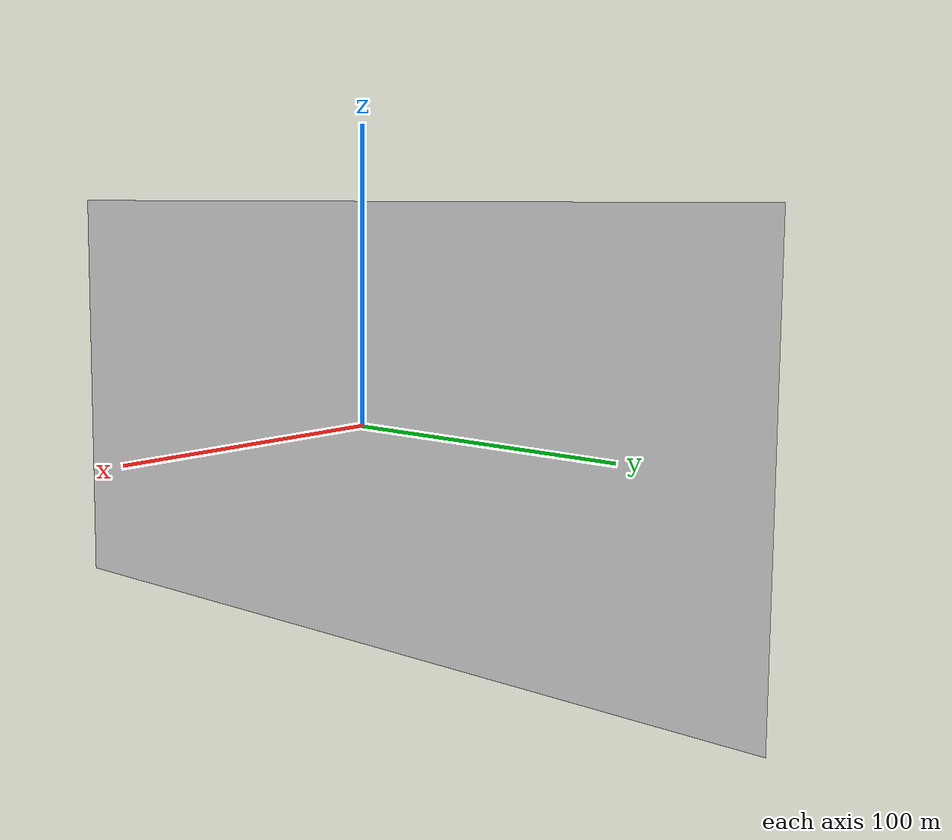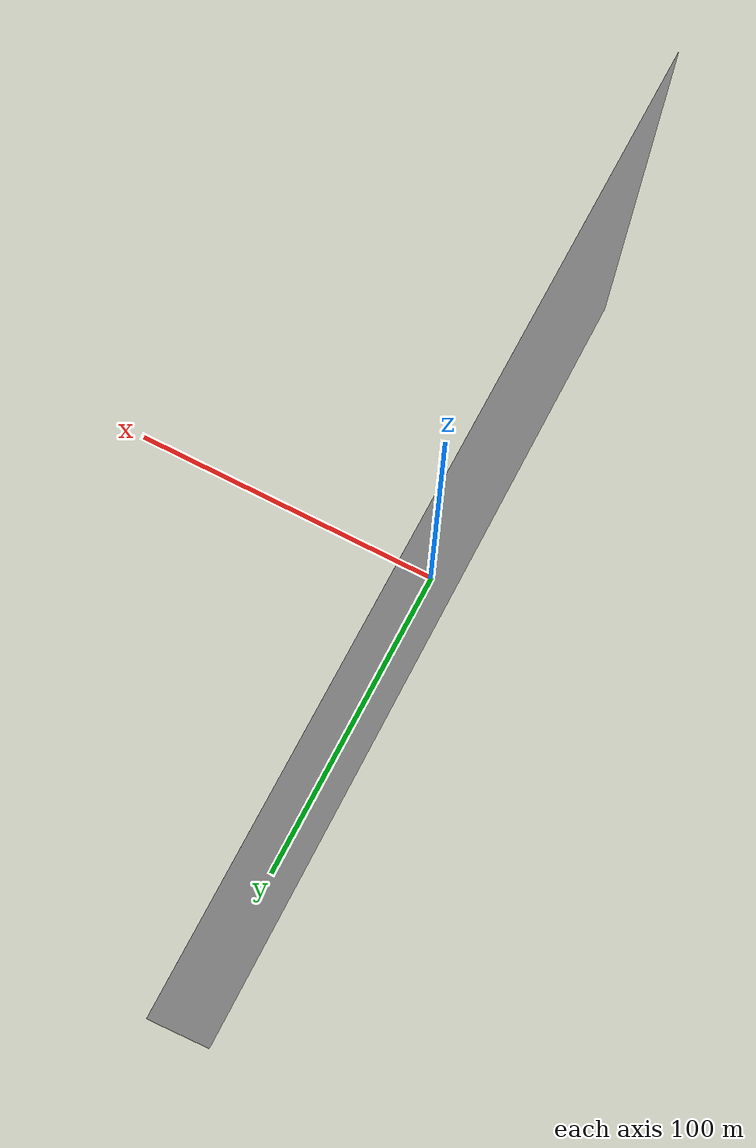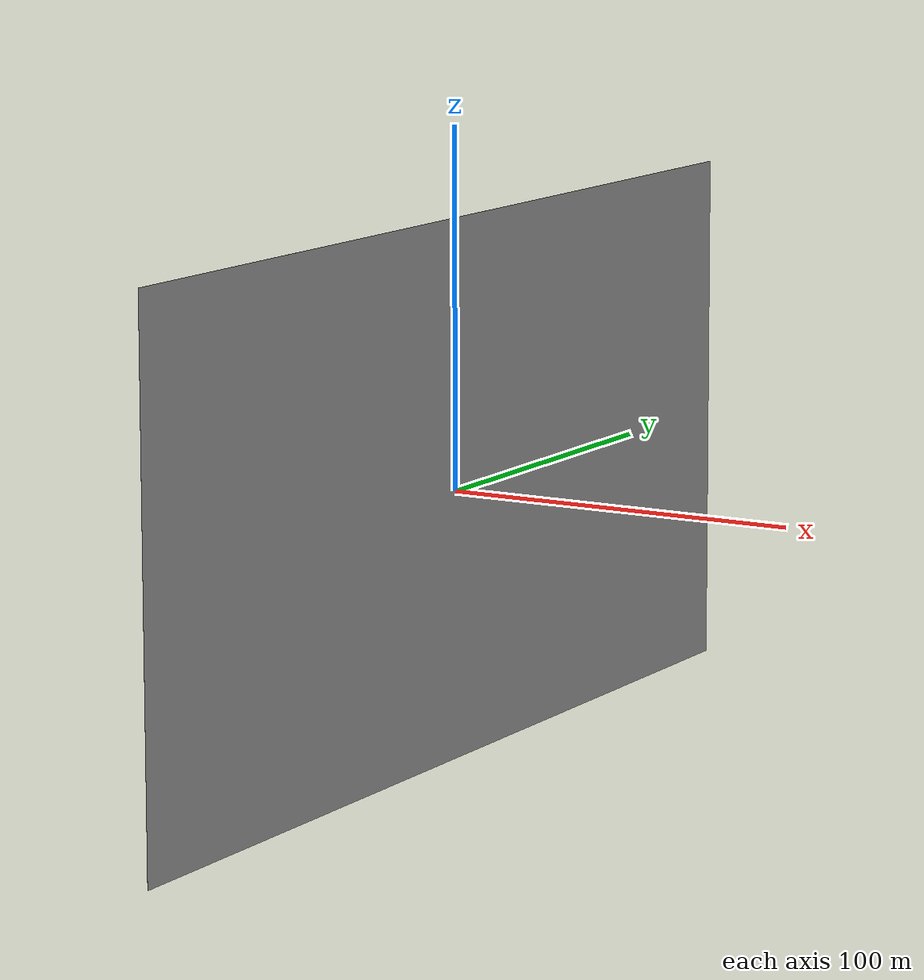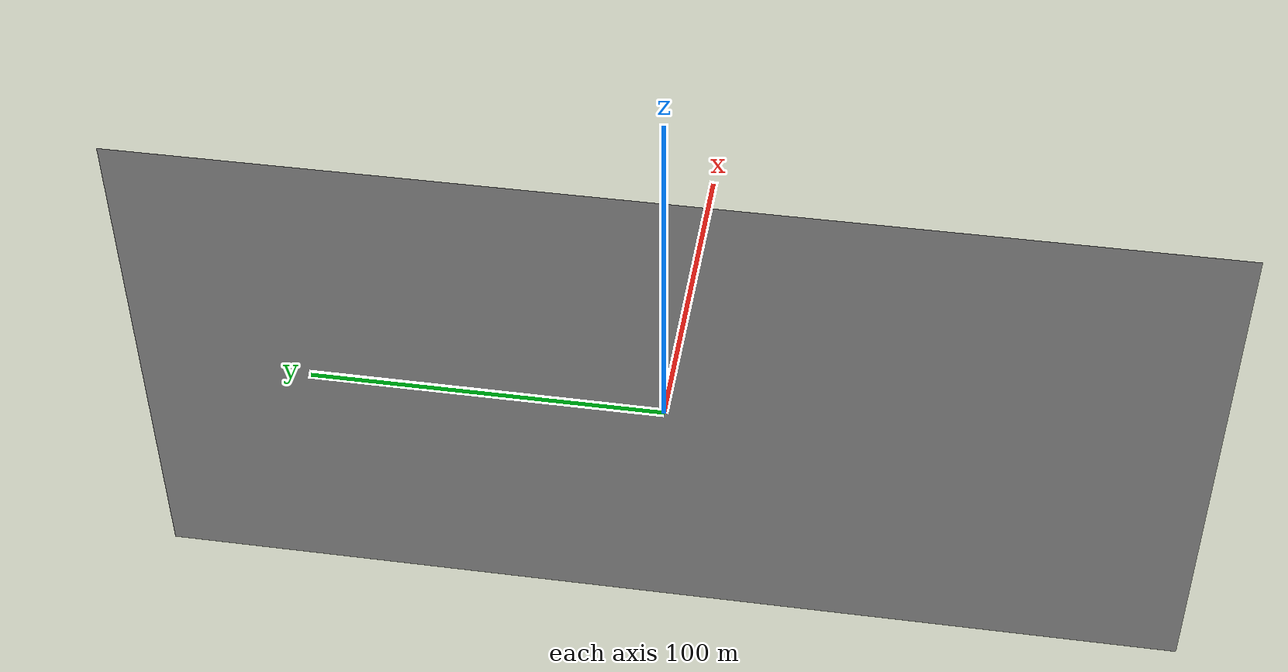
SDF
<?xml version="1.0"?>
<sdf version='1.5'>
  <model name='station_side'>
    <static>true</static>
    <link name="link">
      <collision name="collision">
        <geometry>
          <box>
            <size>0.005 300 150</size>
          </box>
        </geometry>
          <surface>
            <friction>
              <ode>
                <mu>0.2</mu>
                <mu2>0.2</mu2>
              </ode>
            </friction>
          </surface>
      </collision>
      <visual name="visual">
        <cast_shadows>false</cast_shadows>
        <geometry>
          <box>
            <size>0.005 300 150</size>
          </box>
        </geometry>
        <material>
          <script>
            <name>station_side</name>
            <uri>model://station_side/materials/scripts</uri>
            <uri>model://station_side/materials/textures</uri>
          </script>
        </material>
      </visual>
    </link>
  </model>
</sdf>
